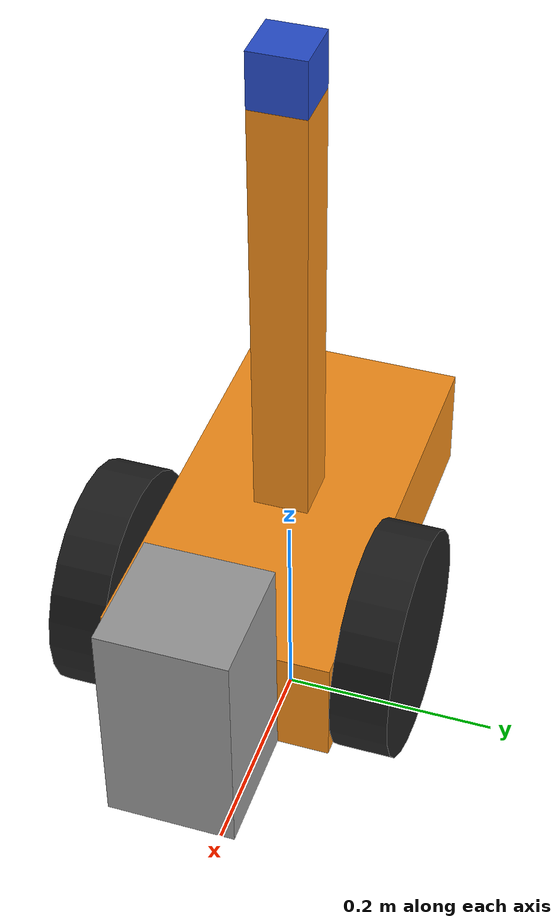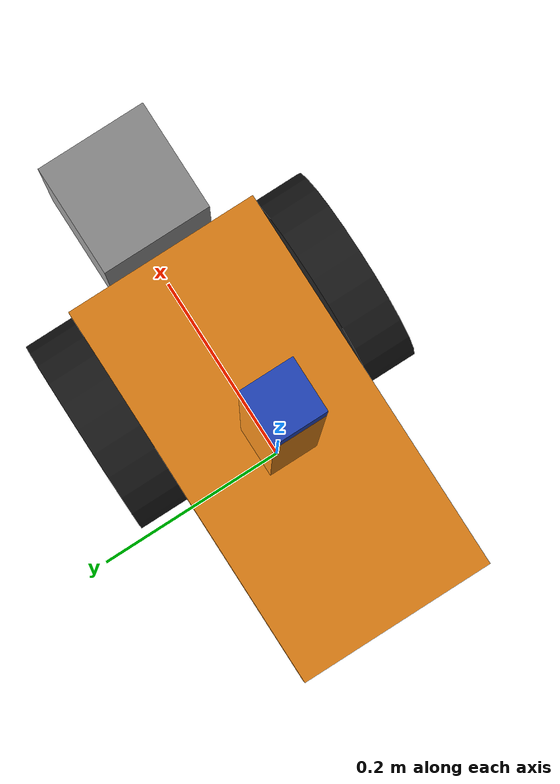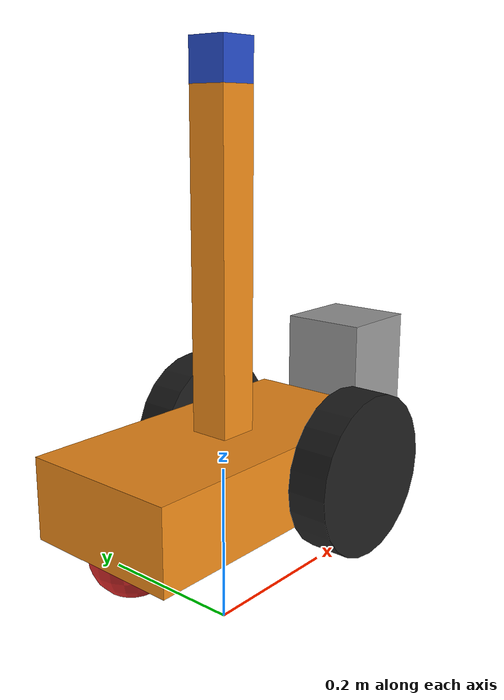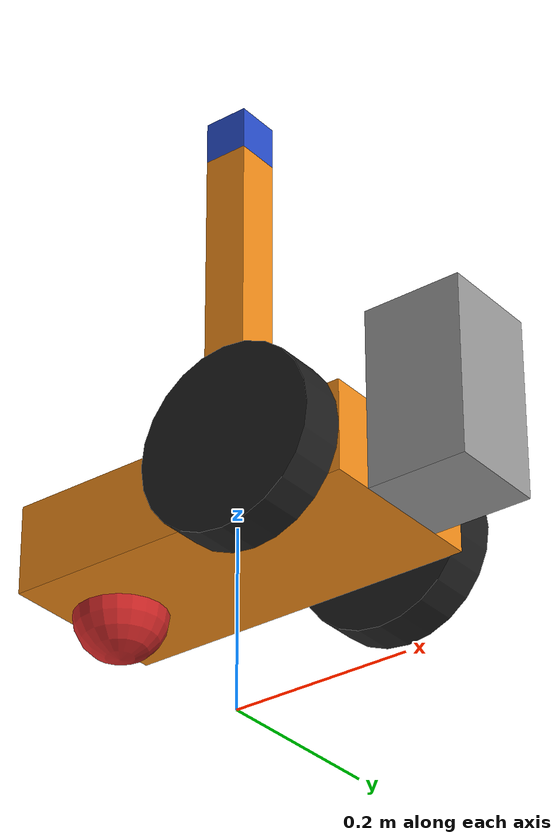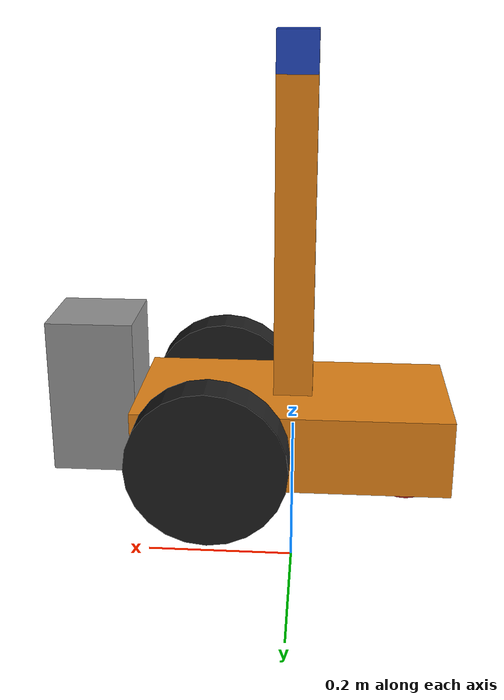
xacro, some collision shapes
<?xml version="1.0"?>

<!--sick lms100 namespaces: sensor, controller, interface-->
<robot name="mybot" xmlns:xacro="http://www.ros.org/wiki/xacro"
	xmlns:sensor="http://playerstage.sourceforge.net/gazebo/xmlschema/#sensor"
 	xmlns:controller="http://playerstage.sourceforge.net/gazebo/xmlschema/#controller"
	xmlns:interface="http://playerstage.sourceforge.net/gazebo/xmlschema/#interface">

	<xacro:property name="PI" value="3.1415926535897931"/>

	<xacro:property name="chassisHeight" value="0.1"/>
	<xacro:property name="chassisLength" value="0.4"/>
	<xacro:property name="chassisWidth" value="0.2"/>
	<xacro:property name="chassisMass" value="50"/>

	<xacro:property name="casterRadius" value="0.05"/>
	<xacro:property name="casterMass" value="5"/>

	<xacro:property name="wheelWidth" value="0.05"/>
	<xacro:property name="wheelRadius" value="0.1"/>
	<xacro:property name="wheelPos" value="0.1"/>
	<xacro:property name="wheelMass" value="5"/>

	<xacro:property name="cameraSize" value="0.05"/>
	<xacro:property name="cameraMass" value="0.1"/>

	<xacro:property name="cameraStandHeight" value="0.4"/>
	<xacro:property name="cameraStandMass" value="0.2"/>

	<xacro:property name="laser_x" value="0.11" />
	<xacro:property name="laser_y" value="0.11" />
	<xacro:property name="laser_z" value="0.2" />
	<xacro:property name="laser_mass" value="1.1" />

	<xacro:include filename="$(find mybot_description)/urdf/mybot.gazebo" />
	<xacro:include filename="$(find mybot_description)/urdf/materials.xacro" />
	<xacro:include filename="$(find mybot_description)/urdf/macros.xacro" />
	<xacro:include filename="$(find mybot_description)/urdf/accessories/sick_lms100.xacro"/>

<link name="footprint" />

<joint name="base_joint" type="fixed">
  <origin xyz="0 0 0.1" rpy="0 0 0"/>
  <parent link="footprint"/>
  <child link="chassis"/>
</joint>

<link name='chassis'>
  <collision>
    <origin xyz="0 0 ${wheelRadius}" rpy="0 0 0"/>
    <geometry>
      <box size="${chassisLength} ${chassisWidth} ${chassisHeight}"/>
    </geometry>
  </collision>
  <visual>
    <origin xyz="0 0 ${wheelRadius}" rpy="0 0 0"/>
    <geometry>
      <box size="${chassisLength} ${chassisWidth} ${chassisHeight}"/>
    </geometry>
    <material name="orange"/>
  </visual>
  <inertial>
    <origin xyz="0 0 ${wheelRadius}" rpy="0 0 0"/>
    <mass value="${chassisMass}"/>
    <box_inertia m="${chassisMass}" x="${chassisLength}" y="${chassisWidth}" z="${chassisHeight}"/>
  </inertial>
</link>

<joint name="fixed" type="fixed">
  <parent link="chassis"/>
  <child link="caster_wheel"/>
</joint>

<link name="caster_wheel">
  <collision>
    <origin xyz="${casterRadius-chassisLength/2} 0 ${casterRadius-chassisHeight+wheelRadius}" rpy="0 0 0"/>
    <geometry>
      <sphere radius="${casterRadius}"/>
    </geometry>
  </collision>

  <visual>
    <origin xyz="${casterRadius-chassisLength/2} 0 ${casterRadius-chassisHeight+wheelRadius}" rpy="0 0 0"/>
    <geometry>
      <sphere radius="${casterRadius}"/>
    </geometry>
    <material name="red"/>
  </visual>

  <inertial>
    <origin xyz="${casterRadius-chassisLength/2} 0 ${casterRadius-chassisHeight+wheelRadius}" rpy="0 0 0"/>
    <mass value="${casterMass}"/>
    <sphere_inertia m="${casterMass}" r="${casterRadius}"/>
  </inertial>
</link>

<wheel lr="left" tY="1"/>
<wheel lr="right" tY="-1"/>

<joint name="fixed_cam" type="fixed">
  <origin xyz="0 0 ${cameraStandHeight/2+cameraSize/2}" rpy="0 0 0"/>
  <parent link="camera_stand"/>
  <child link="camera"/>
</joint>

<link name="camera">
  <collision>
    <origin xyz="0 0 0" rpy="0 0 0"/>
    <geometry>
      <box size="${cameraSize} ${cameraSize} ${cameraSize}"/>
    </geometry>
  </collision>

  <visual>
    <origin xyz="0 0 0" rpy="0 0 0"/>
    <geometry>
      <box size="${cameraSize} ${cameraSize} ${cameraSize}"/>
    </geometry>
    <material name="blue"/>
  </visual>

  <inertial>
    <mass value="${cameraMass}" />
    <origin xyz="0 0 0" rpy="0 0 0"/>
    <box_inertia m="${cameraMass}" x="${cameraSize}" y="${cameraSize}" z="${cameraSize}" />
  </inertial>
</link>

<joint name="fixed_cam_stand" type="fixed">
  <origin xyz="${chassisLength/2-0.2} 0 ${chassisHeight/2+wheelRadius+cameraStandHeight/2}" rpy="0 0 0"/>
  <parent link="chassis"/>
  <child link="camera_stand"/>
</joint>

<link name="camera_stand">
  <collision>
    <origin xyz="0 0 0" rpy="0 0 0"/>
    <geometry>
      <box size="${cameraSize} ${cameraSize} ${cameraStandHeight}"/>
    </geometry>
  </collision>

  <visual>
    <origin xyz="0 0 0" rpy="0 0 0"/>
    <geometry>
      <box size="${cameraSize} ${cameraSize} ${cameraStandHeight}"/>
    </geometry>
    <material name="orange"/>
  </visual>

  <inertial>
    <mass value="${cameraStandMass}" />
    <origin xyz="0 0 0" rpy="0 0 0"/>
    <box_inertia m="${cameraStandMass}" x="${cameraSize}" y="${cameraSize}" z="${cameraStandHeight}" />
  </inertial>
</link>

<joint name="fixed_base_laser" type="fixed">
  <origin xyz="${chassisLength/2+laser_x/2} 0 ${wheelRadius+laser_z/2}" rpy="0 0 0"/>
  <parent link="chassis"/>
  <child link="base_laser"/>
</joint>

<sick_lms100_gazebo prefix="base"/>

</robot>

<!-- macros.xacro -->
<robot name="mybot" >

<macro name="cylinder_inertia" params="m r h">
  <inertia  ixx="${m*(3*r*r+h*h)/12}" ixy = "0" ixz = "0"
    iyy="${m*(3*r*r+h*h)/12}" iyz = "0"
    izz="${m*r*r/2}"
  />
</macro>

<macro name="box_inertia" params="m x y z">
  <inertia  ixx="${m*(y*y+z*z)/12}" ixy = "0" ixz = "0"
    iyy="${m*(x*x+z*z)/12}" iyz = "0"
    izz="${m*(x*x+z*z)/12}"
  />
</macro>

<macro name="sphere_inertia" params="m r">
  <inertia  ixx="${2*m*r*r/5}" ixy = "0" ixz = "0"
    iyy="${2*m*r*r/5}" iyz = "0"
    izz="${2*m*r*r/5}"
  />
</macro>

<macro name="wheel" params="lr tY">

<link name="${lr}_wheel">
  <collision>
    <origin xyz="0 0 0" rpy="0 ${PI/2} ${PI/2}" />
    <geometry>
      <cylinder length="${wheelWidth}" radius="${wheelRadius}"/>
    </geometry>
  </collision>

  <visual>
    <origin xyz="0 0 0" rpy="0 ${PI/2} ${PI/2}" />
    <geometry>
      <cylinder length="${wheelWidth}" radius="${wheelRadius}"/>
    </geometry>
    <material name="black"/>
  </visual>

  <inertial>
    <origin xyz="0 0 0" rpy="0 ${PI/2} ${PI/2}" />
    <mass value="${wheelMass}"/>
    <cylinder_inertia m="${wheelMass}" r="${wheelRadius}" h="${wheelWidth}"/>
  </inertial>
</link>

<gazebo reference="${lr}_wheel">
  <mu1 value="100.0"/>
  <mu2 value="100.0"/>
  <kp  value="10000000.0" />
  <kd  value="1.0" />
  <fdir1 value="1 0 0"/>
  <material>Gazebo/Black</material>
</gazebo>

<joint name="${lr}_wheel_hinge" type="continuous">
  <parent link="chassis"/>
  <child link="${lr}_wheel"/>
<origin xyz="${-wheelPos+chassisLength/2} ${tY*wheelWidth/2+tY*chassisWidth/2} ${wheelRadius}" rpy="0 0 0" />
  <axis xyz="0 1 0" rpy="0 0 0" />
  <limit effort="100" velocity="100"/>
  <joint_properties damping="0.0" friction="0.0"/>
</joint>

<transmission name="${lr}_trans">
  <type>transmission_interface/SimpleTransmission</type>
  <joint name="${lr}_wheel_hinge">
    <hardwareInterface>EffortJointInterface</hardwareInterface>
  </joint>

  <actuator name="${lr}Motor">
    <hardwareInterface>EffortJointInterface</hardwareInterface>
    <mechanicalReduction>10</mechanicalReduction>
  </actuator>
</transmission>

</macro>

</robot>

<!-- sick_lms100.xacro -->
<robot name="mybot" >

  <macro name="sick_lms100_gazebo" params="prefix">

    <link name="${prefix}_laser">
      <inertial>
        <mass value="${laser_mass}" />
        <origin xyz="0 0 0" />
        <inertia ixx="${0.0833333 * laser_mass * (laser_y*laser_y + laser_z*laser_z)}" ixy="0.0" ixz="0.0"
          iyy="${0.0833333 * laser_mass * (laser_x*laser_x + laser_z*laser_z)}" iyz="0.0"
          izz="${0.0833333 * laser_mass * (laser_x*laser_x + laser_y*laser_y)}" />
      </inertial>
      <visual>
        <origin xyz="0 0 0" rpy="0 0 0" />
        <geometry>
          <mesh filename="package://husky_description/meshes/accessories/sick_lms100.dae" />
        </geometry>
      </visual>
      <collision>
        <origin xyz="0 0 -0.05" rpy="0 0 0" />
        <geometry>
          <box size="${laser_x} ${laser_y} ${laser_z}" />
        </geometry>
      </collision>
    </link>

    <gazebo reference="${prefix}_laser">
      <material>Gazebo/Grey</material>
      <turnGravityOff>true</turnGravityOff>
      <sensor type="ray" name="${prefix}_laser">
        <pose>0 0 0 0 0 0</pose>
        <visualize>false</visualize>
        <update_rate>40</update_rate>
        <ray>
          <scan>
            <horizontal>
              <samples>720</samples>
              <resolution>1</resolution>
              <min_angle>-1.570796</min_angle>
              <max_angle>1.570796</max_angle>
            </horizontal>
          </scan>
          <range>
            <min>0.10</min>
            <max>6.0</max>
            <resolution>0.01</resolution>
          </range>
          <noise>
            <type>gaussian</type>
            <mean>0.0</mean>
            <stddev>0.001</stddev>
          </noise>
        </ray>
        <plugin name="gazebo_ros_laser" filename="libgazebo_ros_laser.so">
          <topicName>scan</topicName>
          <frameName>${prefix}_laser</frameName>
        </plugin>
      </sensor>
    </gazebo>

  </macro>
</robot>
